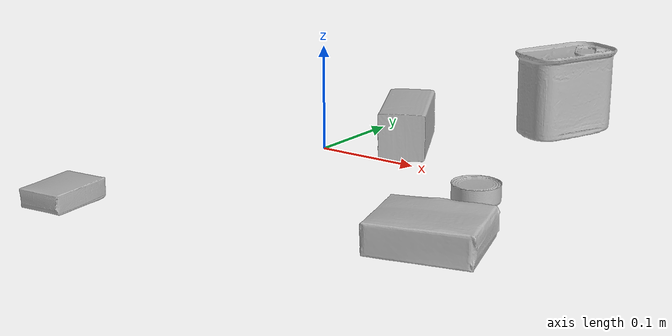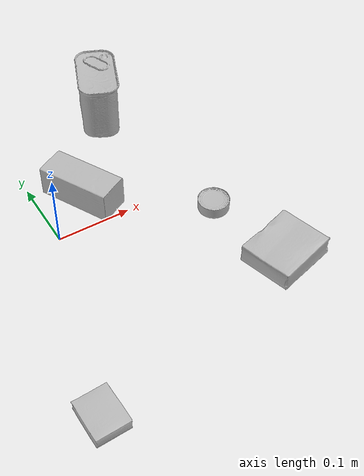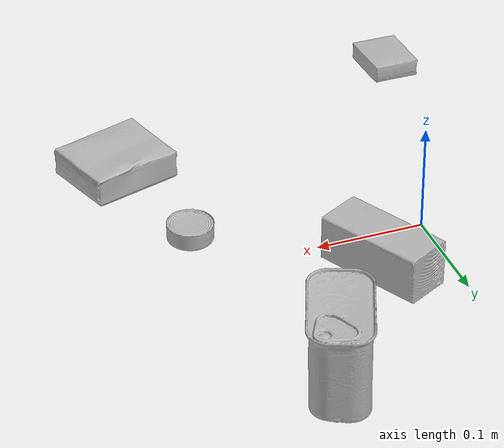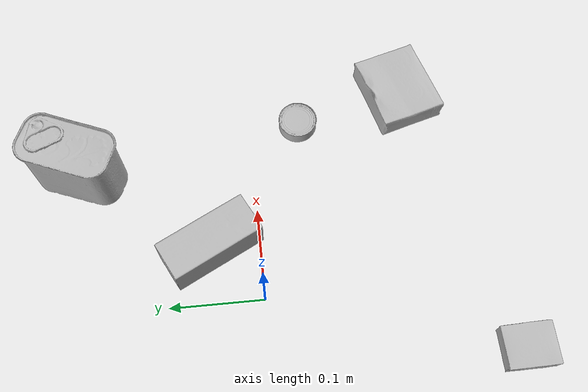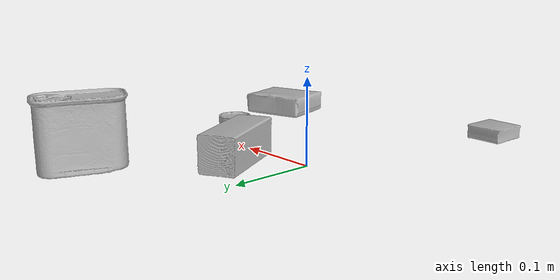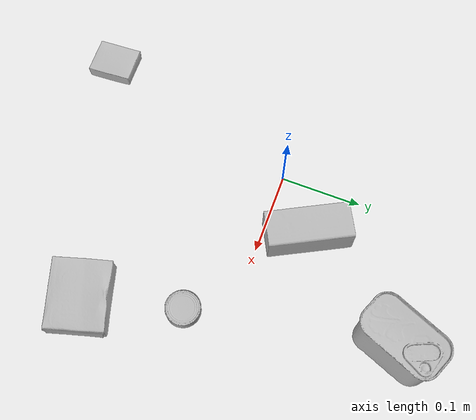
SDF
<sdf version="1.4">
  <world name="default">
    <light name="light1" type="point">
      <pose>0 0 1 0 0 0</pose>
      <diffuse>3 3 3 1</diffuse>
      <specular>3 3 3 1</specular>
    </light>
    <light name="light2" type="point">
      <pose>0 0.5 2 0 0 0</pose>
      <diffuse>1 1 1 1</diffuse>
      <specular>1 1 1 1</specular>
    </light>
    <light name="light3" type="point">
      <pose>0 0.5 2 0 0 0</pose>
      <diffuse>3 3 3 1</diffuse>
      <specular>3 3 3 1</specular>
    </light>
    <scene>
      <ambient>0.7 0.7 0.7</ambient>
    </scene>
    <model name="box1">
      <link name="link_box1">
        <collision name="default">
          <geometry>
            <mesh>
              <uri>model://pudding_box/collision_meshes/collision.obj</uri>
              <scale>0.5 0.5 0.5</scale>
            </mesh>
          </geometry>
          <surface>
            <friction>
              <ode>
                <mu>0.5</mu>
                <mu2>0.5</mu2>
              </ode>
            </friction>
          <contact>
        <ode>
            <max_vel>0</max_vel>
            <min_depth>0.0001</min_depth>
            <kp>1e8</kp>
        </ode>
    </contact></surface>
        </collision>
        <visual name="default">
          <geometry>
            <mesh>
              <uri>model://pudding_box/visual_meshes/visual.dae</uri>
              <scale>0.5 0.5 0.5</scale>
            </mesh>
          </geometry>
        </visual>
        <inertial>
          <mass>0.037190694361925125</mass>
          <pose>0.00024474109522998333 0.00040339428232982755 -0.0002594413817860186 0.005213101817299687 -0.0066037968510836995 0.02007982330137587</pose>
          <inertia>
            <ixx>1.0510541e-05</ixx>
            <iyy>7.071568e-06</iyy>
            <izz>1.552156e-05</izz>
            <ixy>0</ixy>
            <ixz>0</ixz>
            <iyz>0</iyz>
          </inertia>
        </inertial>
      </link>
      <pose>-0.0749954804778099 -0.259097695350647 0.009862902574241161 0.02234844874066307 -0.011391801029533393 0.0288504642768746</pose>
    </model>
    <model name="box2">
      <link name="link_box2">
        <collision name="default">
          <geometry>
            <mesh>
              <uri>model://gelatin_box/collision_meshes/collision.obj</uri>
              <scale>1.0 1.0 1.0</scale>
            </mesh>
          </geometry>
          <surface>
            <friction>
              <ode>
                <mu>0.5</mu>
                <mu2>0.5</mu2>
              </ode>
            </friction>
          <contact>
        <ode>
            <max_vel>0</max_vel>
            <min_depth>0.0001</min_depth>
            <kp>1e8</kp>
        </ode>
    </contact></surface>
        </collision>
        <visual name="default">
          <geometry>
            <mesh>
              <uri>model://gelatin_box/visual_meshes/visual.dae</uri>
              <scale>1.0 1.0 1.0</scale>
            </mesh>
          </geometry>
        </visual>
        <inertial>
          <mass>0.11744645982980728</mass>
          <pose>0.0004319618456065655 0.00011156871914863586 -0.0003640321083366871 -0.001050371865231848 -0.004755818223747806 0.01644056319675078</pose>
          <inertia>
            <ixx>8.290762e-05</ixx>
            <iyy>5.9220478e-05</iyy>
            <izz>0.00012620387</izz>
            <ixy>0</ixy>
            <ixz>0</ixz>
            <iyz>0</iyz>
          </inertia>
        </inertial>
      </link>
      <pose>0.22900457680225372 -0.1720971316099167 0.015168316662311554 0.005597075977383463 -0.0073041291924424165 1.845137661204413</pose>
    </model>
    <model name="box3">
      <link name="link_box3">
        <collision name="default">
          <geometry>
            <mesh>
              <uri>model://wood_block/collision_meshes/collision.obj</uri>
              <scale>0.5 0.5 0.5</scale>
            </mesh>
          </geometry>
          <surface>
            <friction>
              <ode>
                <mu>0.5</mu>
                <mu2>0.5</mu2>
              </ode>
            </friction>
          <contact>
        <ode>
            <max_vel>0</max_vel>
            <min_depth>0.0001</min_depth>
            <kp>1e8</kp>
        </ode>
    </contact></surface>
        </collision>
        <visual name="default">
          <geometry>
            <mesh>
              <uri>model://wood_block/visual_meshes/visual.dae</uri>
              <scale>0.5 0.5 0.5</scale>
            </mesh>
          </geometry>
        </visual>
        <inertial>
          <mass>0.2439567744731903</mass>
          <pose>-2.906657982748584e-06 -0.00028540476341731846 0.00013204292918089777 -0.05220841280222248 -0.00519269633387802 -0.006861376952924709</pose>
          <inertia>
            <ixx>8.161277e-05</ixx>
            <iyy>0.00025781477</iyy>
            <izz>0.0002568504</izz>
            <ixy>0</ixy>
            <ixz>0</ixz>
            <iyz>0</iyz>
          </inertia>
        </inertial>
      </link>
      <pose>0.060187648981809616 0.05166696757078171 0.022629261016845703 -0.00520831845279204 0.005718786342795535 2.052589536001992</pose>
    </model>
    <model name="can1">
      <link name="link_can1">
        <collision name="default">
          <geometry>
            <mesh>
              <uri>model://tuna_fish_can/collision_meshes/collision.obj</uri>
              <scale>0.5 0.5 0.5</scale>
            </mesh>
          </geometry>
          <surface>
            <friction>
              <ode>
                <mu>0.5</mu>
                <mu2>0.5</mu2>
              </ode>
            </friction>
          <contact>
        <ode>
            <max_vel>0</max_vel>
            <min_depth>0.0001</min_depth>
            <kp>1e8</kp>
        </ode>
    </contact></surface>
        </collision>
        <visual name="default">
          <geometry>
            <mesh>
              <uri>model://tuna_fish_can/visual_meshes/visual.dae</uri>
              <scale>0.5 0.5 0.5</scale>
            </mesh>
          </geometry>
        </visual>
        <inertial>
          <mass>0.02880808152258396</mass>
          <pose>-2.036173827946186e-05 -7.256211574713234e-06 -0.0005269025568850338 -0.0017944794030227106 0.00017162104037918286 0.24054189207372795</pose>
          <inertia>
            <ixx>3.894896e-06</ixx>
            <iyy>3.878662e-06</iyy>
            <izz>6.6647226e-06</izz>
            <ixy>0</ixy>
            <ixz>0</ixz>
            <iyz>0</iyz>
          </inertia>
        </inertial>
      </link>
      <pose>0.19917313754558563 -0.05407959595322609 0.008520001545548439 -1.5520097829126506e-08 7.021697139615926e-09 2.8759894550588427</pose>
    </model>
    <model name="can2">
      <link name="link_can2">
        <collision name="default">
          <geometry>
            <mesh>
              <uri>model://potted_meat_can/collision_meshes/collision.obj</uri>
              <scale>1.0 1.0 1.0</scale>
            </mesh>
          </geometry>
          <surface>
            <friction>
              <ode>
                <mu>0.5</mu>
                <mu2>0.5</mu2>
              </ode>
            </friction>
          <contact>
        <ode>
            <max_vel>0</max_vel>
            <min_depth>0.0001</min_depth>
            <kp>1e8</kp>
        </ode>
    </contact></surface>
        </collision>
        <visual name="default">
          <geometry>
            <mesh>
              <uri>model://potted_meat_can/visual_meshes/visual.dae</uri>
              <scale>1.0 1.0 1.0</scale>
            </mesh>
          </geometry>
        </visual>
        <inertial>
          <mass>0.21485549211502075</mass>
          <pose>0.00022888135572429746 -5.989110650261864e-05 -0.0006367442547343671 -0.028093358319385277 -0.007232601893117688 0.015406275523281094</pose>
          <inertia>
            <ixx>0.00027638907</ixx>
            <iyy>0.00016792737</iyy>
            <izz>0.00020102048</izz>
            <ixy>0</ixy>
            <ixz>0</ixz>
            <iyz>0</iyz>
          </inertia>
        </inertial>
      </link>
      <pose>0.1569380760192871 0.1884002387523651 0.04212801158428192 -3.5690531315484e-10 -4.8544351720814e-07 2.7459490776679765</pose>
    </model>
  <physics type="ode">
      <max_contacts>50</max_contacts>
      <ode>
        <solver>
          <type>quick</type>
          <iters>75</iters>
        </solver>
        <constraints>
          <contact_max_correcting_vel>0</contact_max_correcting_vel>
          <contact_surface_layer>0</contact_surface_layer>
        </constraints>
      </ode>
    </physics></world>
</sdf>
